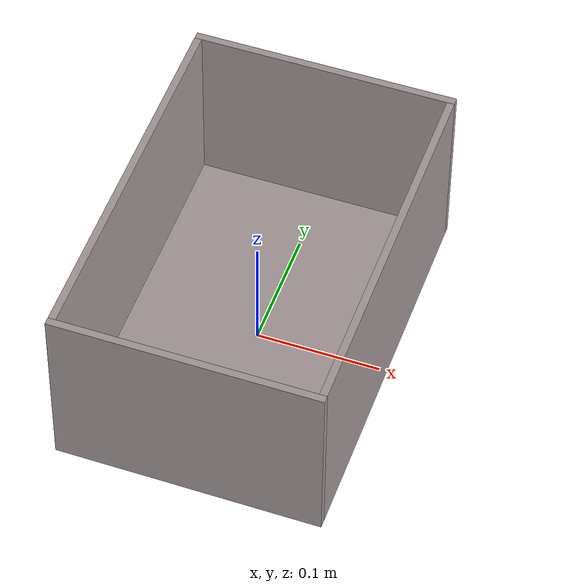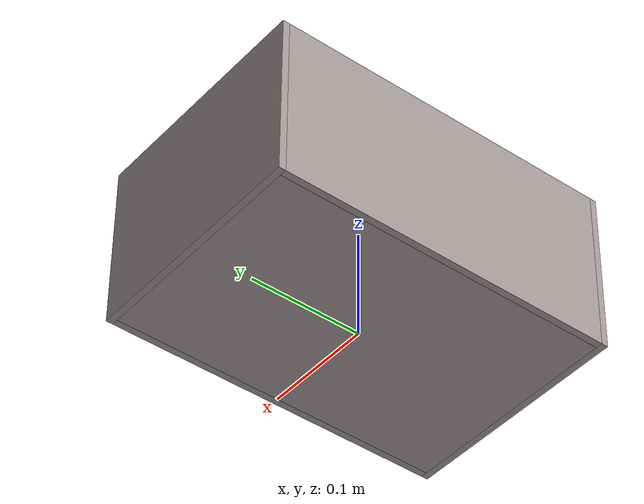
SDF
<?xml version="1.0" ?>
<sdf version="1.5">
  <model name="ra_basket">
    <static>True</static>
    <link name="link">
      <collision name="bottom_plate">
        <pose>0 0 0.003  0 0 0</pose>
        <geometry>
          <box> <size> 0.20 0.30 0.006 </size> </box>
        </geometry>
      </collision>
      <collision name="side_plate0">
        <pose> 0.103 0 0.075  0 0 0</pose>
        <geometry>
          <box> <size> 0.006 0.30 0.15 </size> </box>
        </geometry>
      </collision>
      <collision name="side_plate1">
        <pose>-0.103 0 0.075  0 0 0</pose>
        <geometry>
          <box> <size> 0.006 0.30 0.15 </size> </box>
        </geometry>
      </collision>
      <collision name="side_plate2">
        <pose>0  0.153 0.075  0 0 0</pose>
        <geometry>
          <box> <size> 0.212 0.006 0.15 </size> </box>
        </geometry>
      </collision>
      <collision name="side_plate3">
        <pose>0 -0.153 0.075  0 0 0</pose>
        <geometry>
          <box> <size> 0.212 0.006 0.15 </size> </box>
        </geometry>
      </collision>
      <visual name="bottom_plate">
        <pose>0 0 0.003  0 0 0</pose>
        <geometry>
          <box> <size> 0.20 0.30 0.006 </size> </box>
        </geometry>
        <material>
          <ambient> .6 .55 .55 1</ambient>
          <diffuse>.65 .6  .6  1</diffuse>
          <specular>0.1 0.1 0.1 1</specular>
        </material>
      </visual>
      <visual name="side_plate0">
        <pose> 0.103 0 0.075  0 0 0</pose>
        <geometry>
          <box> <size> 0.006 0.30 0.15 </size> </box>
        </geometry>
        <material>
          <ambient> .6 .55 .55 1</ambient>
          <diffuse>.65 .6  .6  1</diffuse>
          <specular>0.1 0.1 0.1 1</specular>
        </material>
      </visual>
      <visual name="side_plate1">
        <pose>-0.103 0 0.075  0 0 0</pose>
        <geometry>
          <box> <size> 0.006 0.30 0.15 </size> </box>
        </geometry>
        <material>
          <ambient> .6 .55 .55 1</ambient>
          <diffuse>.65 .6  .6  1</diffuse>
          <specular>0.1 0.1 0.1 1</specular>
        </material>
      </visual>
      <visual name="side_plate2">
        <pose>0  0.153 0.075  0 0 0</pose>
        <geometry>
          <box> <size> 0.212 0.006 0.15 </size> </box>
        </geometry>
        <material>
          <ambient> .6 .55 .55 1</ambient>
          <diffuse>.65 .6  .6  1</diffuse>
          <specular>0.1 0.1 0.1 1</specular>
        </material>
      </visual>
      <visual name="side_plate3">
        <pose>0 -0.153 0.075  0 0 0</pose>
        <geometry>
          <box> <size> 0.212 0.006 0.15 </size> </box>
        </geometry>
        <material>
          <ambient> .6 .55 .55 1</ambient>
          <diffuse>.65 .6  .6  1</diffuse>
          <specular>0.1 0.1 0.1 1</specular>
        </material>
      </visual>
    </link>
  </model>
</sdf>
